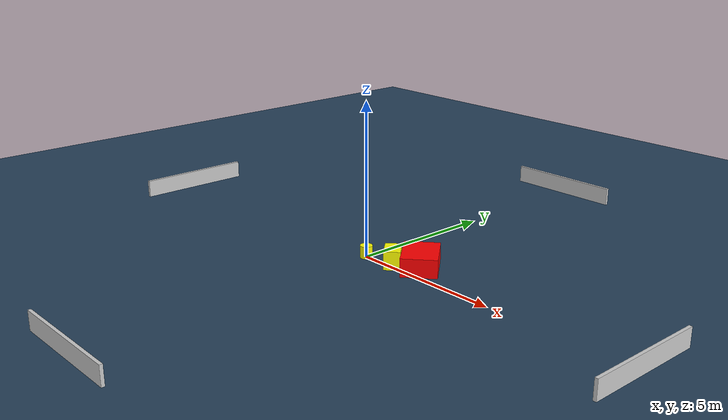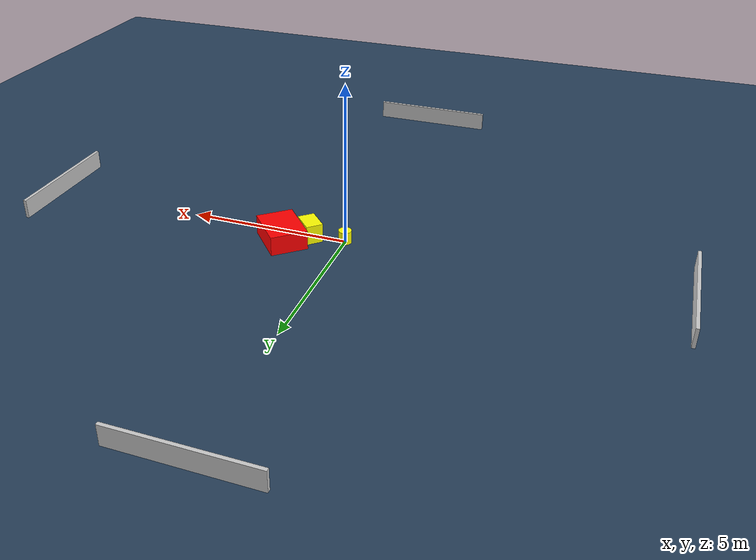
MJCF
<?xml version="1.0" ?>
<mujoco model="generated_environment">
  <option timestep="0.01" integrator="RK4" cone="elliptic"/>
  <default>
    <geom density="1"/>
  </default>
  <asset>
    <texture builtin="gradient" height="3072" name="skybox" rgb1="0.3 0.5 0.7" rgb2="0 0 0" type="skybox" width="512"/>
    <texture builtin="checker" height="300" name="groundplane" rgb1="0.2 0.3 0.4" rgb2="0.1 0.2 0.3" type="2d" width="300"/>
    <material name="groundplane" reflectance="0.2" texrepeat="5 5" texture="groundplane"/>
  </asset>
  <worldbody>
    <light dir="0 0 -1" directional="true" pos="0 0 1.5"/>
    <geom condim="3" friction="0.5 0.005 0.001" material="groundplane" name="floor" pos="0 0 0" size="0 0 0.05" type="plane"/>
    <body name="walls">
      <geom name="wall_1" condim="4" pos="-10.0 0.0 0.3" rgba="0.800000011920929 0.800000011920929 0.800000011920929 1.0" size="0.05 2.0 0.3" type="box"/>
      <geom name="wall_2" condim="4" pos="10.0 0.0 0.3" rgba="0.800000011920929 0.800000011920929 0.800000011920929 1.0" size="0.05 2.0 0.3" type="box"/>
      <geom name="wall_3" condim="4" pos="0.0 -10.0 0.3" rgba="0.800000011920929 0.800000011920929 0.800000011920929 1.0" size="2.0 0.05 0.3" type="box"/>
      <geom name="wall_4" condim="4" pos="0.0 10.0 0.3" rgba="0.800000011920929 0.800000011920929 0.800000011920929 1.0" size="2.0 0.05 0.3" type="box"/>
    </body>
    <body name="robot">
      <joint name="joint_x" type="slide" pos="0 0 0" axis="1 0 0"/>
      <joint name="joint_y" type="slide" pos="0 0 0" axis="0 1 0"/>
      <geom name="robot" type="cylinder" pos="0.0 0.0 0.2" size="0.2 0.2 0.0" mass="5.0" friction="1.0 0.005 0.0001" condim="4" rgba="1.0 1.0 0.0 1.0"/>
    </body>
    <body name="obstacle_1_movable">
      <geom name="obstacle_1_movable" condim="4" pos="1.0780306750942648 0.11629289217390444 0.3" euler="0 0 222.78506061888024" friction="0.0 0.005 0.001" rgba="1.0 1.0 0.0 1.0" size="0.2607960164776024 0.37721282559393665 0.3" type="box" mass="0.1"/>
      <joint type="free"/>
    </body>
    <body name="obstacle_2_static">
      <geom name="obstacle_2_static" condim="4" pos="1.8165889892382154 0.5834058187634218 0.3" euler="0 0 310.97188210231917" friction="0.0 0.005 0.001" rgba="1.0 0.0 0.0 1.0" size="0.7439750231840472 0.5701487045399151 0.3" type="box"/>
    </body>
  </worldbody>
  <actuator>
    <motor name="actuator_x" joint="joint_x" gear="1" ctrlrange="-1 1"/>
    <motor name="actuator_y" joint="joint_y" gear="1" ctrlrange="-1 1"/>
  </actuator>
</mujoco>
